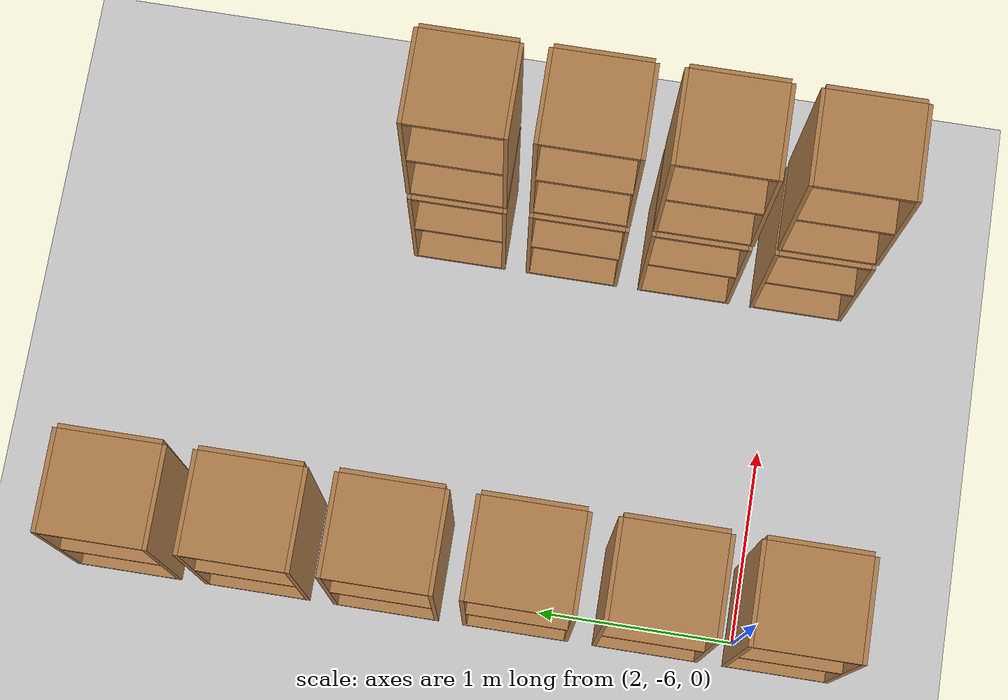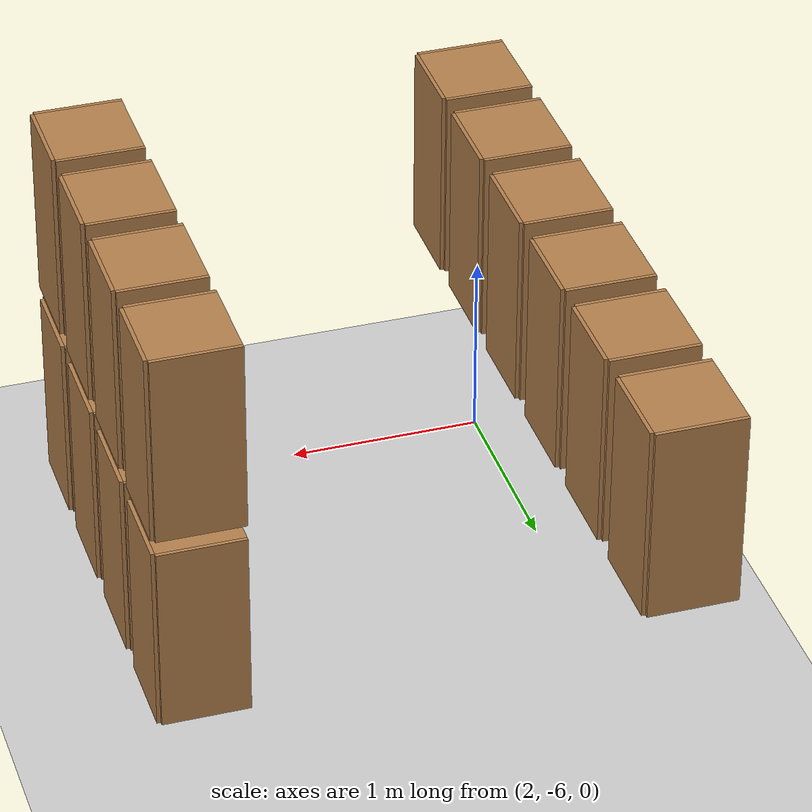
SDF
<sdf version="1.7">
 <world name="default">
  <model name="ground_plane">
   <static>1</static>
   <link name="link">
    <collision name="collision">
     <geometry><plane><normal>0 0 1</normal><size>100 100</size></plane></geometry>
     <surface><friction><ode><mu>100</mu><mu2>50</mu2></ode></friction></surface>
    </collision>
    <visual name="visual">
     <cast_shadows>0</cast_shadows>
     <geometry><plane><normal>0 0 1</normal><size>100 100</size></plane></geometry>
     <material>
      <script><uri>file://media/materials/scripts/gazebo.material</uri><name>Gazebo/Grey</name></script>
     </material>
    </visual>
   </link>
  </model>
  <model name="cabinet_29">
   <static>1</static>
   <link name="cabinet_bottom_plate">
    <inertial>
     <pose>0 0 -1 0 -0 0</pose>
     <inertia><ixx>2.05</ixx><ixy>0</ixy><ixz>0</ixz><iyy>2.05</iyy><iyz>0</iyz><izz>2.05</izz></inertia>
     <mass>25</mass>
    </inertial>
    <collision name="cabinet_bottom_plate_geom">
     <pose>0 0 0.01 0 -0 0</pose>
     <geometry><box><size>0.45 0.45 0.02</size></box></geometry>
    </collision>
    <visual name="cabinet_bottom_plate_geom_visual">
     <pose>0 0 0.01 0 -0 0</pose>
     <geometry><box><size>0.45 0.45 0.02</size></box></geometry>
     <material>
      <script><uri>file://media/materials/scripts/gazebo.material</uri><name>Gazebo/Wood</name></script>
     </material>
    </visual>
    <collision name="cabinet_bottom_plate_geom_cabinet_back_plate">
     <pose>0.235 0 0.51 0 -0 0</pose>
     <geometry><box><size>0.02 0.45 1.02</size></box></geometry>
    </collision>
    <visual name="cabinet_bottom_plate_geom_cabinet_back_plate_visual">
     <pose>0.235 0 0.51 0 -0 0</pose>
     <geometry><box><size>0.02 0.45 1.02</size></box></geometry>
     <material>
      <script><uri>file://media/materials/scripts/gazebo.material</uri><name>Gazebo/Wood</name></script>
     </material>
    </visual>
    <collision name="cabinet_bottom_plate_geom_cabinet_left_plate">
     <pose>0 0.235 0.51 0 -0 0</pose>
     <geometry><box><size>0.45 0.02 1.02</size></box></geometry>
    </collision>
    <visual name="cabinet_bottom_plate_geom_cabinet_left_plate_visual">
     <pose>0 0.235 0.51 0 -0 0</pose>
     <geometry><box><size>0.45 0.02 1.02</size></box></geometry>
     <material>
      <script><uri>file://media/materials/scripts/gazebo.material</uri><name>Gazebo/Wood</name></script>
     </material>
    </visual>
    <collision name="cabinet_bottom_plate_geom_cabinet_middle_plate">
     <pose>0 0 0.51 0 -0 0</pose>
     <geometry><box><size>0.45 0.45 0.02</size></box></geometry>
    </collision>
    <visual name="cabinet_bottom_plate_geom_cabinet_middle_plate_visual">
     <pose>0 0 0.51 0 -0 0</pose>
     <geometry><box><size>0.45 0.45 0.02</size></box></geometry>
     <material>
      <script><uri>file://media/materials/scripts/gazebo.material</uri><name>Gazebo/Wood</name></script>
     </material>
    </visual>
    <collision name="cabinet_bottom_plate_geom_cabinet_right_plate">
     <pose>0 -0.235 0.51 0 -0 0</pose>
     <geometry><box><size>0.45 0.02 1.02</size></box></geometry>
    </collision>
    <visual name="cabinet_bottom_plate_geom_cabinet_right_plate_visual">
     <pose>0 -0.235 0.51 0 -0 0</pose>
     <geometry><box><size>0.45 0.02 1.02</size></box></geometry>
     <material>
      <script><uri>file://media/materials/scripts/gazebo.material</uri><name>Gazebo/Wood</name></script>
     </material>
    </visual>
    <collision name="cabinet_bottom_plate_geom_cabinet_top_plate">
     <pose>0 0 1.01 0 -0 0</pose>
     <geometry><box><size>0.45 0.45 0.02</size></box></geometry>
    </collision>
    <visual name="cabinet_bottom_plate_geom_cabinet_top_plate_visual">
     <pose>0 0 1.01 0 -0 0</pose>
     <geometry><box><size>0.45 0.45 0.02</size></box></geometry>
     <material>
      <script><uri>file://media/materials/scripts/gazebo.material</uri><name>Gazebo/Wood</name></script>
     </material>
    </visual>
   </link>
   <pose>4 -4.9 0 0 -0 0</pose>
  </model>
  <model name="cabinet_30">
   <static>1</static>
   <link name="cabinet_bottom_plate">
    <inertial>
     <pose>0 0 -1 0 -0 0</pose>
     <inertia><ixx>2.05</ixx><ixy>0</ixy><ixz>0</ixz><iyy>2.05</iyy><iyz>0</iyz><izz>2.05</izz></inertia>
     <mass>25</mass>
    </inertial>
    <collision name="cabinet_bottom_plate_geom">
     <pose>0 0 0.01 0 -0 0</pose>
     <geometry><box><size>0.45 0.45 0.02</size></box></geometry>
    </collision>
    <visual name="cabinet_bottom_plate_geom_visual">
     <pose>0 0 0.01 0 -0 0</pose>
     <geometry><box><size>0.45 0.45 0.02</size></box></geometry>
     <material>
      <script><uri>file://media/materials/scripts/gazebo.material</uri><name>Gazebo/Wood</name></script>
     </material>
    </visual>
    <collision name="cabinet_bottom_plate_geom_cabinet_back_plate">
     <pose>0.235 0 0.51 0 -0 0</pose>
     <geometry><box><size>0.02 0.45 1.02</size></box></geometry>
    </collision>
    <visual name="cabinet_bottom_plate_geom_cabinet_back_plate_visual">
     <pose>0.235 0 0.51 0 -0 0</pose>
     <geometry><box><size>0.02 0.45 1.02</size></box></geometry>
     <material>
      <script><uri>file://media/materials/scripts/gazebo.material</uri><name>Gazebo/Wood</name></script>
     </material>
    </visual>
    <collision name="cabinet_bottom_plate_geom_cabinet_left_plate">
     <pose>0 0.235 0.51 0 -0 0</pose>
     <geometry><box><size>0.45 0.02 1.02</size></box></geometry>
    </collision>
    <visual name="cabinet_bottom_plate_geom_cabinet_left_plate_visual">
     <pose>0 0.235 0.51 0 -0 0</pose>
     <geometry><box><size>0.45 0.02 1.02</size></box></geometry>
     <material>
      <script><uri>file://media/materials/scripts/gazebo.material</uri><name>Gazebo/Wood</name></script>
     </material>
    </visual>
    <collision name="cabinet_bottom_plate_geom_cabinet_middle_plate">
     <pose>0 0 0.51 0 -0 0</pose>
     <geometry><box><size>0.45 0.45 0.02</size></box></geometry>
    </collision>
    <visual name="cabinet_bottom_plate_geom_cabinet_middle_plate_visual">
     <pose>0 0 0.51 0 -0 0</pose>
     <geometry><box><size>0.45 0.45 0.02</size></box></geometry>
     <material>
      <script><uri>file://media/materials/scripts/gazebo.material</uri><name>Gazebo/Wood</name></script>
     </material>
    </visual>
    <collision name="cabinet_bottom_plate_geom_cabinet_right_plate">
     <pose>0 -0.235 0.51 0 -0 0</pose>
     <geometry><box><size>0.45 0.02 1.02</size></box></geometry>
    </collision>
    <visual name="cabinet_bottom_plate_geom_cabinet_right_plate_visual">
     <pose>0 -0.235 0.51 0 -0 0</pose>
     <geometry><box><size>0.45 0.02 1.02</size></box></geometry>
     <material>
      <script><uri>file://media/materials/scripts/gazebo.material</uri><name>Gazebo/Wood</name></script>
     </material>
    </visual>
    <collision name="cabinet_bottom_plate_geom_cabinet_top_plate">
     <pose>0 0 1.01 0 -0 0</pose>
     <geometry><box><size>0.45 0.45 0.02</size></box></geometry>
    </collision>
    <visual name="cabinet_bottom_plate_geom_cabinet_top_plate_visual">
     <pose>0 0 1.01 0 -0 0</pose>
     <geometry><box><size>0.45 0.45 0.02</size></box></geometry>
     <material>
      <script><uri>file://media/materials/scripts/gazebo.material</uri><name>Gazebo/Wood</name></script>
     </material>
    </visual>
   </link>
   <pose>4 -4.3 0 0 -0 0</pose>
  </model>
  <model name="cabinet_31">
   <static>1</static>
   <link name="cabinet_bottom_plate">
    <inertial>
     <pose>0 0 -1 0 -0 0</pose>
     <inertia><ixx>2.05</ixx><ixy>0</ixy><ixz>0</ixz><iyy>2.05</iyy><iyz>0</iyz><izz>2.05</izz></inertia>
     <mass>25</mass>
    </inertial>
    <collision name="cabinet_bottom_plate_geom">
     <pose>0 0 0.01 0 -0 0</pose>
     <geometry><box><size>0.45 0.45 0.02</size></box></geometry>
    </collision>
    <visual name="cabinet_bottom_plate_geom_visual">
     <pose>0 0 0.01 0 -0 0</pose>
     <geometry><box><size>0.45 0.45 0.02</size></box></geometry>
     <material>
      <script><uri>file://media/materials/scripts/gazebo.material</uri><name>Gazebo/Wood</name></script>
     </material>
    </visual>
    <collision name="cabinet_bottom_plate_geom_cabinet_back_plate">
     <pose>0.235 0 0.51 0 -0 0</pose>
     <geometry><box><size>0.02 0.45 1.02</size></box></geometry>
    </collision>
    <visual name="cabinet_bottom_plate_geom_cabinet_back_plate_visual">
     <pose>0.235 0 0.51 0 -0 0</pose>
     <geometry><box><size>0.02 0.45 1.02</size></box></geometry>
     <material>
      <script><uri>file://media/materials/scripts/gazebo.material</uri><name>Gazebo/Wood</name></script>
     </material>
    </visual>
    <collision name="cabinet_bottom_plate_geom_cabinet_left_plate">
     <pose>0 0.235 0.51 0 -0 0</pose>
     <geometry><box><size>0.45 0.02 1.02</size></box></geometry>
    </collision>
    <visual name="cabinet_bottom_plate_geom_cabinet_left_plate_visual">
     <pose>0 0.235 0.51 0 -0 0</pose>
     <geometry><box><size>0.45 0.02 1.02</size></box></geometry>
     <material>
      <script><uri>file://media/materials/scripts/gazebo.material</uri><name>Gazebo/Wood</name></script>
     </material>
    </visual>
    <collision name="cabinet_bottom_plate_geom_cabinet_middle_plate">
     <pose>0 0 0.51 0 -0 0</pose>
     <geometry><box><size>0.45 0.45 0.02</size></box></geometry>
    </collision>
    <visual name="cabinet_bottom_plate_geom_cabinet_middle_plate_visual">
     <pose>0 0 0.51 0 -0 0</pose>
     <geometry><box><size>0.45 0.45 0.02</size></box></geometry>
     <material>
      <script><uri>file://media/materials/scripts/gazebo.material</uri><name>Gazebo/Wood</name></script>
     </material>
    </visual>
    <collision name="cabinet_bottom_plate_geom_cabinet_right_plate">
     <pose>0 -0.235 0.51 0 -0 0</pose>
     <geometry><box><size>0.45 0.02 1.02</size></box></geometry>
    </collision>
    <visual name="cabinet_bottom_plate_geom_cabinet_right_plate_visual">
     <pose>0 -0.235 0.51 0 -0 0</pose>
     <geometry><box><size>0.45 0.02 1.02</size></box></geometry>
     <material>
      <script><uri>file://media/materials/scripts/gazebo.material</uri><name>Gazebo/Wood</name></script>
     </material>
    </visual>
    <collision name="cabinet_bottom_plate_geom_cabinet_top_plate">
     <pose>0 0 1.01 0 -0 0</pose>
     <geometry><box><size>0.45 0.45 0.02</size></box></geometry>
    </collision>
    <visual name="cabinet_bottom_plate_geom_cabinet_top_plate_visual">
     <pose>0 0 1.01 0 -0 0</pose>
     <geometry><box><size>0.45 0.45 0.02</size></box></geometry>
     <material>
      <script><uri>file://media/materials/scripts/gazebo.material</uri><name>Gazebo/Wood</name></script>
     </material>
    </visual>
   </link>
   <pose>4 -6.1 0 0 -0 0</pose>
  </model>
  <model name="cabinet_32">
   <static>1</static>
   <link name="cabinet_bottom_plate">
    <inertial>
     <pose>0 0 -1 0 -0 0</pose>
     <inertia><ixx>2.05</ixx><ixy>0</ixy><ixz>0</ixz><iyy>2.05</iyy><iyz>0</iyz><izz>2.05</izz></inertia>
     <mass>25</mass>
    </inertial>
    <collision name="cabinet_bottom_plate_geom">
     <pose>0 0 0.01 0 -0 0</pose>
     <geometry><box><size>0.45 0.45 0.02</size></box></geometry>
    </collision>
    <visual name="cabinet_bottom_plate_geom_visual">
     <pose>0 0 0.01 0 -0 0</pose>
     <geometry><box><size>0.45 0.45 0.02</size></box></geometry>
     <material>
      <script><uri>file://media/materials/scripts/gazebo.material</uri><name>Gazebo/Wood</name></script>
     </material>
    </visual>
    <collision name="cabinet_bottom_plate_geom_cabinet_back_plate">
     <pose>0.235 0 0.51 0 -0 0</pose>
     <geometry><box><size>0.02 0.45 1.02</size></box></geometry>
    </collision>
    <visual name="cabinet_bottom_plate_geom_cabinet_back_plate_visual">
     <pose>0.235 0 0.51 0 -0 0</pose>
     <geometry><box><size>0.02 0.45 1.02</size></box></geometry>
     <material>
      <script><uri>file://media/materials/scripts/gazebo.material</uri><name>Gazebo/Wood</name></script>
     </material>
    </visual>
    <collision name="cabinet_bottom_plate_geom_cabinet_left_plate">
     <pose>0 0.235 0.51 0 -0 0</pose>
     <geometry><box><size>0.45 0.02 1.02</size></box></geometry>
    </collision>
    <visual name="cabinet_bottom_plate_geom_cabinet_left_plate_visual">
     <pose>0 0.235 0.51 0 -0 0</pose>
     <geometry><box><size>0.45 0.02 1.02</size></box></geometry>
     <material>
      <script><uri>file://media/materials/scripts/gazebo.material</uri><name>Gazebo/Wood</name></script>
     </material>
    </visual>
    <collision name="cabinet_bottom_plate_geom_cabinet_middle_plate">
     <pose>0 0 0.51 0 -0 0</pose>
     <geometry><box><size>0.45 0.45 0.02</size></box></geometry>
    </collision>
    <visual name="cabinet_bottom_plate_geom_cabinet_middle_plate_visual">
     <pose>0 0 0.51 0 -0 0</pose>
     <geometry><box><size>0.45 0.45 0.02</size></box></geometry>
     <material>
      <script><uri>file://media/materials/scripts/gazebo.material</uri><name>Gazebo/Wood</name></script>
     </material>
    </visual>
    <collision name="cabinet_bottom_plate_geom_cabinet_right_plate">
     <pose>0 -0.235 0.51 0 -0 0</pose>
     <geometry><box><size>0.45 0.02 1.02</size></box></geometry>
    </collision>
    <visual name="cabinet_bottom_plate_geom_cabinet_right_plate_visual">
     <pose>0 -0.235 0.51 0 -0 0</pose>
     <geometry><box><size>0.45 0.02 1.02</size></box></geometry>
     <material>
      <script><uri>file://media/materials/scripts/gazebo.material</uri><name>Gazebo/Wood</name></script>
     </material>
    </visual>
    <collision name="cabinet_bottom_plate_geom_cabinet_top_plate">
     <pose>0 0 1.01 0 -0 0</pose>
     <geometry><box><size>0.45 0.45 0.02</size></box></geometry>
    </collision>
    <visual name="cabinet_bottom_plate_geom_cabinet_top_plate_visual">
     <pose>0 0 1.01 0 -0 0</pose>
     <geometry><box><size>0.45 0.45 0.02</size></box></geometry>
     <material>
      <script><uri>file://media/materials/scripts/gazebo.material</uri><name>Gazebo/Wood</name></script>
     </material>
    </visual>
   </link>
   <pose>4 -5.5 0 0 -0 0</pose>
  </model>
  <model name="cabinet_115">
   <static>1</static>
   <link name="cabinet_bottom_plate">
    <inertial>
     <pose>0 0 -1 0 -0 0</pose>
     <inertia><ixx>2.05</ixx><ixy>0</ixy><ixz>0</ixz><iyy>2.05</iyy><iyz>0</iyz><izz>2.05</izz></inertia>
     <mass>25</mass>
    </inertial>
    <collision name="cabinet_bottom_plate_geom">
     <pose>0 0 0.01 0 -0 0</pose>
     <geometry><box><size>0.45 0.45 0.02</size></box></geometry>
    </collision>
    <visual name="cabinet_bottom_plate_geom_visual">
     <pose>0 0 0.01 0 -0 0</pose>
     <geometry><box><size>0.45 0.45 0.02</size></box></geometry>
     <material>
      <script><uri>file://media/materials/scripts/gazebo.material</uri><name>Gazebo/Wood</name></script>
     </material>
    </visual>
    <collision name="cabinet_bottom_plate_geom_cabinet_back_plate">
     <pose>0.235 0 0.51 0 -0 0</pose>
     <geometry><box><size>0.02 0.45 1.02</size></box></geometry>
    </collision>
    <visual name="cabinet_bottom_plate_geom_cabinet_back_plate_visual">
     <pose>0.235 0 0.51 0 -0 0</pose>
     <geometry><box><size>0.02 0.45 1.02</size></box></geometry>
     <material>
      <script><uri>file://media/materials/scripts/gazebo.material</uri><name>Gazebo/Wood</name></script>
     </material>
    </visual>
    <collision name="cabinet_bottom_plate_geom_cabinet_left_plate">
     <pose>0 0.235 0.51 0 -0 0</pose>
     <geometry><box><size>0.45 0.02 1.02</size></box></geometry>
    </collision>
    <visual name="cabinet_bottom_plate_geom_cabinet_left_plate_visual">
     <pose>0 0.235 0.51 0 -0 0</pose>
     <geometry><box><size>0.45 0.02 1.02</size></box></geometry>
     <material>
      <script><uri>file://media/materials/scripts/gazebo.material</uri><name>Gazebo/Wood</name></script>
     </material>
    </visual>
    <collision name="cabinet_bottom_plate_geom_cabinet_middle_plate">
     <pose>0 0 0.51 0 -0 0</pose>
     <geometry><box><size>0.45 0.45 0.02</size></box></geometry>
    </collision>
    <visual name="cabinet_bottom_plate_geom_cabinet_middle_plate_visual">
     <pose>0 0 0.51 0 -0 0</pose>
     <geometry><box><size>0.45 0.45 0.02</size></box></geometry>
     <material>
      <script><uri>file://media/materials/scripts/gazebo.material</uri><name>Gazebo/Wood</name></script>
     </material>
    </visual>
    <collision name="cabinet_bottom_plate_geom_cabinet_right_plate">
     <pose>0 -0.235 0.51 0 -0 0</pose>
     <geometry><box><size>0.45 0.02 1.02</size></box></geometry>
    </collision>
    <visual name="cabinet_bottom_plate_geom_cabinet_right_plate_visual">
     <pose>0 -0.235 0.51 0 -0 0</pose>
     <geometry><box><size>0.45 0.02 1.02</size></box></geometry>
     <material>
      <script><uri>file://media/materials/scripts/gazebo.material</uri><name>Gazebo/Wood</name></script>
     </material>
    </visual>
    <collision name="cabinet_bottom_plate_geom_cabinet_top_plate">
     <pose>0 0 1.01 0 -0 0</pose>
     <geometry><box><size>0.45 0.45 0.02</size></box></geometry>
    </collision>
    <visual name="cabinet_bottom_plate_geom_cabinet_top_plate_visual">
     <pose>0 0 1.01 0 -0 0</pose>
     <geometry><box><size>0.45 0.45 0.02</size></box></geometry>
     <material>
      <script><uri>file://media/materials/scripts/gazebo.material</uri><name>Gazebo/Wood</name></script>
     </material>
    </visual>
   </link>
   <pose>4 -4.3 1.1 0 -0 0</pose>
  </model>
  <model name="cabinet_16_clone_1">
   <static>1</static>
   <link name="cabinet_bottom_plate">
    <inertial>
     <pose>0 0 -1 0 -0 0</pose>
     <inertia><ixx>2.05</ixx><ixy>0</ixy><ixz>0</ixz><iyy>2.05</iyy><iyz>0</iyz><izz>2.05</izz></inertia>
     <mass>25</mass>
    </inertial>
    <collision name="cabinet_bottom_plate_geom">
     <pose>0 0 0.01 0 -0 0</pose>
     <geometry><box><size>0.45 0.45 0.02</size></box></geometry>
    </collision>
    <visual name="cabinet_bottom_plate_geom_visual">
     <pose>0 0 0.01 0 -0 0</pose>
     <geometry><box><size>0.45 0.45 0.02</size></box></geometry>
     <material>
      <script><uri>file://media/materials/scripts/gazebo.material</uri><name>Gazebo/Wood</name></script>
     </material>
    </visual>
    <collision name="cabinet_bottom_plate_geom_cabinet_back_plate">
     <pose>0.235 0 0.51 0 -0 0</pose>
     <geometry><box><size>0.02 0.45 1.02</size></box></geometry>
    </collision>
    <visual name="cabinet_bottom_plate_geom_cabinet_back_plate_visual">
     <pose>0.235 0 0.51 0 -0 0</pose>
     <geometry><box><size>0.02 0.45 1.02</size></box></geometry>
     <material>
      <script><uri>file://media/materials/scripts/gazebo.material</uri><name>Gazebo/Wood</name></script>
     </material>
    </visual>
    <collision name="cabinet_bottom_plate_geom_cabinet_left_plate">
     <pose>0 0.235 0.51 0 -0 0</pose>
     <geometry><box><size>0.45 0.02 1.02</size></box></geometry>
    </collision>
    <visual name="cabinet_bottom_plate_geom_cabinet_left_plate_visual">
     <pose>0 0.235 0.51 0 -0 0</pose>
     <geometry><box><size>0.45 0.02 1.02</size></box></geometry>
     <material>
      <script><uri>file://media/materials/scripts/gazebo.material</uri><name>Gazebo/Wood</name></script>
     </material>
    </visual>
    <collision name="cabinet_bottom_plate_geom_cabinet_middle_plate">
     <pose>0 0 0.51 0 -0 0</pose>
     <geometry><box><size>0.45 0.45 0.02</size></box></geometry>
    </collision>
    <visual name="cabinet_bottom_plate_geom_cabinet_middle_plate_visual">
     <pose>0 0 0.51 0 -0 0</pose>
     <geometry><box><size>0.45 0.45 0.02</size></box></geometry>
     <material>
      <script><uri>file://media/materials/scripts/gazebo.material</uri><name>Gazebo/Wood</name></script>
     </material>
    </visual>
    <collision name="cabinet_bottom_plate_geom_cabinet_right_plate">
     <pose>0 -0.235 0.51 0 -0 0</pose>
     <geometry><box><size>0.45 0.02 1.02</size></box></geometry>
    </collision>
    <visual name="cabinet_bottom_plate_geom_cabinet_right_plate_visual">
     <pose>0 -0.235 0.51 0 -0 0</pose>
     <geometry><box><size>0.45 0.02 1.02</size></box></geometry>
     <material>
      <script><uri>file://media/materials/scripts/gazebo.material</uri><name>Gazebo/Wood</name></script>
     </material>
    </visual>
    <collision name="cabinet_bottom_plate_geom_cabinet_top_plate">
     <pose>0 0 1.01 0 -0 0</pose>
     <geometry><box><size>0.45 0.45 0.02</size></box></geometry>
    </collision>
    <visual name="cabinet_bottom_plate_geom_cabinet_top_plate_visual">
     <pose>0 0 1.01 0 -0 0</pose>
     <geometry><box><size>0.45 0.45 0.02</size></box></geometry>
     <material>
      <script><uri>file://media/materials/scripts/gazebo.material</uri><name>Gazebo/Wood</name></script>
     </material>
    </visual>
   </link>
   <pose>4 -4.9 1.1 0 -0 0</pose>
  </model>
  <model name="cabinet_16_clone_2">
   <static>1</static>
   <link name="cabinet_bottom_plate">
    <inertial>
     <pose>0 0 -1 0 -0 0</pose>
     <inertia><ixx>2.05</ixx><ixy>0</ixy><ixz>0</ixz><iyy>2.05</iyy><iyz>0</iyz><izz>2.05</izz></inertia>
     <mass>25</mass>
    </inertial>
    <collision name="cabinet_bottom_plate_geom">
     <pose>0 0 0.01 0 -0 0</pose>
     <geometry><box><size>0.45 0.45 0.02</size></box></geometry>
    </collision>
    <visual name="cabinet_bottom_plate_geom_visual">
     <pose>0 0 0.01 0 -0 0</pose>
     <geometry><box><size>0.45 0.45 0.02</size></box></geometry>
     <material>
      <script><uri>file://media/materials/scripts/gazebo.material</uri><name>Gazebo/Wood</name></script>
     </material>
    </visual>
    <collision name="cabinet_bottom_plate_geom_cabinet_back_plate">
     <pose>0.235 0 0.51 0 -0 0</pose>
     <geometry><box><size>0.02 0.45 1.02</size></box></geometry>
    </collision>
    <visual name="cabinet_bottom_plate_geom_cabinet_back_plate_visual">
     <pose>0.235 0 0.51 0 -0 0</pose>
     <geometry><box><size>0.02 0.45 1.02</size></box></geometry>
     <material>
      <script><uri>file://media/materials/scripts/gazebo.material</uri><name>Gazebo/Wood</name></script>
     </material>
    </visual>
    <collision name="cabinet_bottom_plate_geom_cabinet_left_plate">
     <pose>0 0.235 0.51 0 -0 0</pose>
     <geometry><box><size>0.45 0.02 1.02</size></box></geometry>
    </collision>
    <visual name="cabinet_bottom_plate_geom_cabinet_left_plate_visual">
     <pose>0 0.235 0.51 0 -0 0</pose>
     <geometry><box><size>0.45 0.02 1.02</size></box></geometry>
     <material>
      <script><uri>file://media/materials/scripts/gazebo.material</uri><name>Gazebo/Wood</name></script>
     </material>
    </visual>
    <collision name="cabinet_bottom_plate_geom_cabinet_middle_plate">
     <pose>0 0 0.51 0 -0 0</pose>
     <geometry><box><size>0.45 0.45 0.02</size></box></geometry>
    </collision>
    <visual name="cabinet_bottom_plate_geom_cabinet_middle_plate_visual">
     <pose>0 0 0.51 0 -0 0</pose>
     <geometry><box><size>0.45 0.45 0.02</size></box></geometry>
     <material>
      <script><uri>file://media/materials/scripts/gazebo.material</uri><name>Gazebo/Wood</name></script>
     </material>
    </visual>
    <collision name="cabinet_bottom_plate_geom_cabinet_right_plate">
     <pose>0 -0.235 0.51 0 -0 0</pose>
     <geometry><box><size>0.45 0.02 1.02</size></box></geometry>
    </collision>
    <visual name="cabinet_bottom_plate_geom_cabinet_right_plate_visual">
     <pose>0 -0.235 0.51 0 -0 0</pose>
     <geometry><box><size>0.45 0.02 1.02</size></box></geometry>
     <material>
      <script><uri>file://media/materials/scripts/gazebo.material</uri><name>Gazebo/Wood</name></script>
     </material>
    </visual>
    <collision name="cabinet_bottom_plate_geom_cabinet_top_plate">
     <pose>0 0 1.01 0 -0 0</pose>
     <geometry><box><size>0.45 0.45 0.02</size></box></geometry>
    </collision>
    <visual name="cabinet_bottom_plate_geom_cabinet_top_plate_visual">
     <pose>0 0 1.01 0 -0 0</pose>
     <geometry><box><size>0.45 0.45 0.02</size></box></geometry>
     <material>
      <script><uri>file://media/materials/scripts/gazebo.material</uri><name>Gazebo/Wood</name></script>
     </material>
    </visual>
   </link>
   <pose>4 -5.5 1.1 0 -0 0</pose>
  </model>
  <model name="cabinet_16_clone_3">
   <static>1</static>
   <link name="cabinet_bottom_plate">
    <inertial>
     <pose>0 0 -1 0 -0 0</pose>
     <inertia><ixx>2.05</ixx><ixy>0</ixy><ixz>0</ixz><iyy>2.05</iyy><iyz>0</iyz><izz>2.05</izz></inertia>
     <mass>25</mass>
    </inertial>
    <collision name="cabinet_bottom_plate_geom">
     <pose>0 0 0.01 0 -0 0</pose>
     <geometry><box><size>0.45 0.45 0.02</size></box></geometry>
    </collision>
    <visual name="cabinet_bottom_plate_geom_visual">
     <pose>0 0 0.01 0 -0 0</pose>
     <geometry><box><size>0.45 0.45 0.02</size></box></geometry>
     <material>
      <script><uri>file://media/materials/scripts/gazebo.material</uri><name>Gazebo/Wood</name></script>
     </material>
    </visual>
    <collision name="cabinet_bottom_plate_geom_cabinet_back_plate">
     <pose>0.235 0 0.51 0 -0 0</pose>
     <geometry><box><size>0.02 0.45 1.02</size></box></geometry>
    </collision>
    <visual name="cabinet_bottom_plate_geom_cabinet_back_plate_visual">
     <pose>0.235 0 0.51 0 -0 0</pose>
     <geometry><box><size>0.02 0.45 1.02</size></box></geometry>
     <material>
      <script><uri>file://media/materials/scripts/gazebo.material</uri><name>Gazebo/Wood</name></script>
     </material>
    </visual>
    <collision name="cabinet_bottom_plate_geom_cabinet_left_plate">
     <pose>0 0.235 0.51 0 -0 0</pose>
     <geometry><box><size>0.45 0.02 1.02</size></box></geometry>
    </collision>
    <visual name="cabinet_bottom_plate_geom_cabinet_left_plate_visual">
     <pose>0 0.235 0.51 0 -0 0</pose>
     <geometry><box><size>0.45 0.02 1.02</size></box></geometry>
     <material>
      <script><uri>file://media/materials/scripts/gazebo.material</uri><name>Gazebo/Wood</name></script>
     </material>
    </visual>
    <collision name="cabinet_bottom_plate_geom_cabinet_middle_plate">
     <pose>0 0 0.51 0 -0 0</pose>
     <geometry><box><size>0.45 0.45 0.02</size></box></geometry>
    </collision>
    <visual name="cabinet_bottom_plate_geom_cabinet_middle_plate_visual">
     <pose>0 0 0.51 0 -0 0</pose>
     <geometry><box><size>0.45 0.45 0.02</size></box></geometry>
     <material>
      <script><uri>file://media/materials/scripts/gazebo.material</uri><name>Gazebo/Wood</name></script>
     </material>
    </visual>
    <collision name="cabinet_bottom_plate_geom_cabinet_right_plate">
     <pose>0 -0.235 0.51 0 -0 0</pose>
     <geometry><box><size>0.45 0.02 1.02</size></box></geometry>
    </collision>
    <visual name="cabinet_bottom_plate_geom_cabinet_right_plate_visual">
     <pose>0 -0.235 0.51 0 -0 0</pose>
     <geometry><box><size>0.45 0.02 1.02</size></box></geometry>
     <material>
      <script><uri>file://media/materials/scripts/gazebo.material</uri><name>Gazebo/Wood</name></script>
     </material>
    </visual>
    <collision name="cabinet_bottom_plate_geom_cabinet_top_plate">
     <pose>0 0 1.01 0 -0 0</pose>
     <geometry><box><size>0.45 0.45 0.02</size></box></geometry>
    </collision>
    <visual name="cabinet_bottom_plate_geom_cabinet_top_plate_visual">
     <pose>0 0 1.01 0 -0 0</pose>
     <geometry><box><size>0.45 0.45 0.02</size></box></geometry>
     <material>
      <script><uri>file://media/materials/scripts/gazebo.material</uri><name>Gazebo/Wood</name></script>
     </material>
    </visual>
   </link>
   <pose>4 -6.1 1.1 0 -0 0</pose>
  </model>
  <model name="cabinet_16_clone_4">
   <static>1</static>
   <link name="cabinet_bottom_plate">
    <inertial>
     <pose>0 0 -1 0 -0 0</pose>
     <inertia><ixx>2.05</ixx><ixy>0</ixy><ixz>0</ixz><iyy>2.05</iyy><iyz>0</iyz><izz>2.05</izz></inertia>
     <mass>25</mass>
    </inertial>
    <collision name="cabinet_bottom_plate_geom">
     <pose>0 0 0.01 0 -0 0</pose>
     <geometry><box><size>0.45 0.45 0.02</size></box></geometry>
    </collision>
    <visual name="cabinet_bottom_plate_geom_visual">
     <pose>0 0 0.01 0 -0 0</pose>
     <geometry><box><size>0.45 0.45 0.02</size></box></geometry>
     <material>
      <script><uri>file://media/materials/scripts/gazebo.material</uri><name>Gazebo/Wood</name></script>
     </material>
    </visual>
    <collision name="cabinet_bottom_plate_geom_cabinet_back_plate">
     <pose>0.235 0 0.51 0 -0 0</pose>
     <geometry><box><size>0.02 0.45 1.02</size></box></geometry>
    </collision>
    <visual name="cabinet_bottom_plate_geom_cabinet_back_plate_visual">
     <pose>0.235 0 0.51 0 -0 0</pose>
     <geometry><box><size>0.02 0.45 1.02</size></box></geometry>
     <material>
      <script><uri>file://media/materials/scripts/gazebo.material</uri><name>Gazebo/Wood</name></script>
     </material>
    </visual>
    <collision name="cabinet_bottom_plate_geom_cabinet_left_plate">
     <pose>0 0.235 0.51 0 -0 0</pose>
     <geometry><box><size>0.45 0.02 1.02</size></box></geometry>
    </collision>
    <visual name="cabinet_bottom_plate_geom_cabinet_left_plate_visual">
     <pose>0 0.235 0.51 0 -0 0</pose>
     <geometry><box><size>0.45 0.02 1.02</size></box></geometry>
     <material>
      <script><uri>file://media/materials/scripts/gazebo.material</uri><name>Gazebo/Wood</name></script>
     </material>
    </visual>
    <collision name="cabinet_bottom_plate_geom_cabinet_middle_plate">
     <pose>0 0 0.51 0 -0 0</pose>
     <geometry><box><size>0.45 0.45 0.02</size></box></geometry>
    </collision>
    <visual name="cabinet_bottom_plate_geom_cabinet_middle_plate_visual">
     <pose>0 0 0.51 0 -0 0</pose>
     <geometry><box><size>0.45 0.45 0.02</size></box></geometry>
     <material>
      <script><uri>file://media/materials/scripts/gazebo.material</uri><name>Gazebo/Wood</name></script>
     </material>
    </visual>
    <collision name="cabinet_bottom_plate_geom_cabinet_right_plate">
     <pose>0 -0.235 0.51 0 -0 0</pose>
     <geometry><box><size>0.45 0.02 1.02</size></box></geometry>
    </collision>
    <visual name="cabinet_bottom_plate_geom_cabinet_right_plate_visual">
     <pose>0 -0.235 0.51 0 -0 0</pose>
     <geometry><box><size>0.45 0.02 1.02</size></box></geometry>
     <material>
      <script><uri>file://media/materials/scripts/gazebo.material</uri><name>Gazebo/Wood</name></script>
     </material>
    </visual>
    <collision name="cabinet_bottom_plate_geom_cabinet_top_plate">
     <pose>0 0 1.01 0 -0 0</pose>
     <geometry><box><size>0.45 0.45 0.02</size></box></geometry>
    </collision>
    <visual name="cabinet_bottom_plate_geom_cabinet_top_plate_visual">
     <pose>0 0 1.01 0 -0 0</pose>
     <geometry><box><size>0.45 0.45 0.02</size></box></geometry>
     <material>
      <script><uri>file://media/materials/scripts/gazebo.material</uri><name>Gazebo/Wood</name></script>
     </material>
    </visual>
   </link>
   <pose>2 -3.1 1.1 0 -0 0</pose>
  </model>
  <model name="cabinet_16_clone_5">
   <static>1</static>
   <link name="cabinet_bottom_plate">
    <inertial>
     <pose>0 0 -1 0 -0 0</pose>
     <inertia><ixx>2.05</ixx><ixy>0</ixy><ixz>0</ixz><iyy>2.05</iyy><iyz>0</iyz><izz>2.05</izz></inertia>
     <mass>25</mass>
    </inertial>
    <collision name="cabinet_bottom_plate_geom">
     <pose>0 0 0.01 0 -0 0</pose>
     <geometry><box><size>0.45 0.45 0.02</size></box></geometry>
    </collision>
    <visual name="cabinet_bottom_plate_geom_visual">
     <pose>0 0 0.01 0 -0 0</pose>
     <geometry><box><size>0.45 0.45 0.02</size></box></geometry>
     <material>
      <script><uri>file://media/materials/scripts/gazebo.material</uri><name>Gazebo/Wood</name></script>
     </material>
    </visual>
    <collision name="cabinet_bottom_plate_geom_cabinet_back_plate">
     <pose>0.235 0 0.51 0 -0 0</pose>
     <geometry><box><size>0.02 0.45 1.02</size></box></geometry>
    </collision>
    <visual name="cabinet_bottom_plate_geom_cabinet_back_plate_visual">
     <pose>0.235 0 0.51 0 -0 0</pose>
     <geometry><box><size>0.02 0.45 1.02</size></box></geometry>
     <material>
      <script><uri>file://media/materials/scripts/gazebo.material</uri><name>Gazebo/Wood</name></script>
     </material>
    </visual>
    <collision name="cabinet_bottom_plate_geom_cabinet_left_plate">
     <pose>0 0.235 0.51 0 -0 0</pose>
     <geometry><box><size>0.45 0.02 1.02</size></box></geometry>
    </collision>
    <visual name="cabinet_bottom_plate_geom_cabinet_left_plate_visual">
     <pose>0 0.235 0.51 0 -0 0</pose>
     <geometry><box><size>0.45 0.02 1.02</size></box></geometry>
     <material>
      <script><uri>file://media/materials/scripts/gazebo.material</uri><name>Gazebo/Wood</name></script>
     </material>
    </visual>
    <collision name="cabinet_bottom_plate_geom_cabinet_middle_plate">
     <pose>0 0 0.51 0 -0 0</pose>
     <geometry><box><size>0.45 0.45 0.02</size></box></geometry>
    </collision>
    <visual name="cabinet_bottom_plate_geom_cabinet_middle_plate_visual">
     <pose>0 0 0.51 0 -0 0</pose>
     <geometry><box><size>0.45 0.45 0.02</size></box></geometry>
     <material>
      <script><uri>file://media/materials/scripts/gazebo.material</uri><name>Gazebo/Wood</name></script>
     </material>
    </visual>
    <collision name="cabinet_bottom_plate_geom_cabinet_right_plate">
     <pose>0 -0.235 0.51 0 -0 0</pose>
     <geometry><box><size>0.45 0.02 1.02</size></box></geometry>
    </collision>
    <visual name="cabinet_bottom_plate_geom_cabinet_right_plate_visual">
     <pose>0 -0.235 0.51 0 -0 0</pose>
     <geometry><box><size>0.45 0.02 1.02</size></box></geometry>
     <material>
      <script><uri>file://media/materials/scripts/gazebo.material</uri><name>Gazebo/Wood</name></script>
     </material>
    </visual>
    <collision name="cabinet_bottom_plate_geom_cabinet_top_plate">
     <pose>0 0 1.01 0 -0 0</pose>
     <geometry><box><size>0.45 0.45 0.02</size></box></geometry>
    </collision>
    <visual name="cabinet_bottom_plate_geom_cabinet_top_plate_visual">
     <pose>0 0 1.01 0 -0 0</pose>
     <geometry><box><size>0.45 0.45 0.02</size></box></geometry>
     <material>
      <script><uri>file://media/materials/scripts/gazebo.material</uri><name>Gazebo/Wood</name></script>
     </material>
    </visual>
   </link>
   <pose>2 -3.7 1.1 0 -0 0</pose>
  </model>
  <model name="cabinet_16_clone_6">
   <static>1</static>
   <link name="cabinet_bottom_plate">
    <inertial>
     <pose>0 0 -1 0 -0 0</pose>
     <inertia><ixx>2.05</ixx><ixy>0</ixy><ixz>0</ixz><iyy>2.05</iyy><iyz>0</iyz><izz>2.05</izz></inertia>
     <mass>25</mass>
    </inertial>
    <collision name="cabinet_bottom_plate_geom">
     <pose>0 0 0.01 0 -0 0</pose>
     <geometry><box><size>0.45 0.45 0.02</size></box></geometry>
    </collision>
    <visual name="cabinet_bottom_plate_geom_visual">
     <pose>0 0 0.01 0 -0 0</pose>
     <geometry><box><size>0.45 0.45 0.02</size></box></geometry>
     <material>
      <script><uri>file://media/materials/scripts/gazebo.material</uri><name>Gazebo/Wood</name></script>
     </material>
    </visual>
    <collision name="cabinet_bottom_plate_geom_cabinet_back_plate">
     <pose>0.235 0 0.51 0 -0 0</pose>
     <geometry><box><size>0.02 0.45 1.02</size></box></geometry>
    </collision>
    <visual name="cabinet_bottom_plate_geom_cabinet_back_plate_visual">
     <pose>0.235 0 0.51 0 -0 0</pose>
     <geometry><box><size>0.02 0.45 1.02</size></box></geometry>
     <material>
      <script><uri>file://media/materials/scripts/gazebo.material</uri><name>Gazebo/Wood</name></script>
     </material>
    </visual>
    <collision name="cabinet_bottom_plate_geom_cabinet_left_plate">
     <pose>0 0.235 0.51 0 -0 0</pose>
     <geometry><box><size>0.45 0.02 1.02</size></box></geometry>
    </collision>
    <visual name="cabinet_bottom_plate_geom_cabinet_left_plate_visual">
     <pose>0 0.235 0.51 0 -0 0</pose>
     <geometry><box><size>0.45 0.02 1.02</size></box></geometry>
     <material>
      <script><uri>file://media/materials/scripts/gazebo.material</uri><name>Gazebo/Wood</name></script>
     </material>
    </visual>
    <collision name="cabinet_bottom_plate_geom_cabinet_middle_plate">
     <pose>0 0 0.51 0 -0 0</pose>
     <geometry><box><size>0.45 0.45 0.02</size></box></geometry>
    </collision>
    <visual name="cabinet_bottom_plate_geom_cabinet_middle_plate_visual">
     <pose>0 0 0.51 0 -0 0</pose>
     <geometry><box><size>0.45 0.45 0.02</size></box></geometry>
     <material>
      <script><uri>file://media/materials/scripts/gazebo.material</uri><name>Gazebo/Wood</name></script>
     </material>
    </visual>
    <collision name="cabinet_bottom_plate_geom_cabinet_right_plate">
     <pose>0 -0.235 0.51 0 -0 0</pose>
     <geometry><box><size>0.45 0.02 1.02</size></box></geometry>
    </collision>
    <visual name="cabinet_bottom_plate_geom_cabinet_right_plate_visual">
     <pose>0 -0.235 0.51 0 -0 0</pose>
     <geometry><box><size>0.45 0.02 1.02</size></box></geometry>
     <material>
      <script><uri>file://media/materials/scripts/gazebo.material</uri><name>Gazebo/Wood</name></script>
     </material>
    </visual>
    <collision name="cabinet_bottom_plate_geom_cabinet_top_plate">
     <pose>0 0 1.01 0 -0 0</pose>
     <geometry><box><size>0.45 0.45 0.02</size></box></geometry>
    </collision>
    <visual name="cabinet_bottom_plate_geom_cabinet_top_plate_visual">
     <pose>0 0 1.01 0 -0 0</pose>
     <geometry><box><size>0.45 0.45 0.02</size></box></geometry>
     <material>
      <script><uri>file://media/materials/scripts/gazebo.material</uri><name>Gazebo/Wood</name></script>
     </material>
    </visual>
   </link>
   <pose>2 -4.3 1.1 0 -0 0</pose>
  </model>
  <model name="cabinet_16_clone_7">
   <static>1</static>
   <link name="cabinet_bottom_plate">
    <inertial>
     <pose>0 0 -1 0 -0 0</pose>
     <inertia><ixx>2.05</ixx><ixy>0</ixy><ixz>0</ixz><iyy>2.05</iyy><iyz>0</iyz><izz>2.05</izz></inertia>
     <mass>25</mass>
    </inertial>
    <collision name="cabinet_bottom_plate_geom">
     <pose>0 0 0.01 0 -0 0</pose>
     <geometry><box><size>0.45 0.45 0.02</size></box></geometry>
    </collision>
    <visual name="cabinet_bottom_plate_geom_visual">
     <pose>0 0 0.01 0 -0 0</pose>
     <geometry><box><size>0.45 0.45 0.02</size></box></geometry>
     <material>
      <script><uri>file://media/materials/scripts/gazebo.material</uri><name>Gazebo/Wood</name></script>
     </material>
    </visual>
    <collision name="cabinet_bottom_plate_geom_cabinet_back_plate">
     <pose>0.235 0 0.51 0 -0 0</pose>
     <geometry><box><size>0.02 0.45 1.02</size></box></geometry>
    </collision>
    <visual name="cabinet_bottom_plate_geom_cabinet_back_plate_visual">
     <pose>0.235 0 0.51 0 -0 0</pose>
     <geometry><box><size>0.02 0.45 1.02</size></box></geometry>
     <material>
      <script><uri>file://media/materials/scripts/gazebo.material</uri><name>Gazebo/Wood</name></script>
     </material>
    </visual>
    <collision name="cabinet_bottom_plate_geom_cabinet_left_plate">
     <pose>0 0.235 0.51 0 -0 0</pose>
     <geometry><box><size>0.45 0.02 1.02</size></box></geometry>
    </collision>
    <visual name="cabinet_bottom_plate_geom_cabinet_left_plate_visual">
     <pose>0 0.235 0.51 0 -0 0</pose>
     <geometry><box><size>0.45 0.02 1.02</size></box></geometry>
     <material>
      <script><uri>file://media/materials/scripts/gazebo.material</uri><name>Gazebo/Wood</name></script>
     </material>
    </visual>
    <collision name="cabinet_bottom_plate_geom_cabinet_middle_plate">
     <pose>0 0 0.51 0 -0 0</pose>
     <geometry><box><size>0.45 0.45 0.02</size></box></geometry>
    </collision>
    <visual name="cabinet_bottom_plate_geom_cabinet_middle_plate_visual">
     <pose>0 0 0.51 0 -0 0</pose>
     <geometry><box><size>0.45 0.45 0.02</size></box></geometry>
     <material>
      <script><uri>file://media/materials/scripts/gazebo.material</uri><name>Gazebo/Wood</name></script>
     </material>
    </visual>
    <collision name="cabinet_bottom_plate_geom_cabinet_right_plate">
     <pose>0 -0.235 0.51 0 -0 0</pose>
     <geometry><box><size>0.45 0.02 1.02</size></box></geometry>
    </collision>
    <visual name="cabinet_bottom_plate_geom_cabinet_right_plate_visual">
     <pose>0 -0.235 0.51 0 -0 0</pose>
     <geometry><box><size>0.45 0.02 1.02</size></box></geometry>
     <material>
      <script><uri>file://media/materials/scripts/gazebo.material</uri><name>Gazebo/Wood</name></script>
     </material>
    </visual>
    <collision name="cabinet_bottom_plate_geom_cabinet_top_plate">
     <pose>0 0 1.01 0 -0 0</pose>
     <geometry><box><size>0.45 0.45 0.02</size></box></geometry>
    </collision>
    <visual name="cabinet_bottom_plate_geom_cabinet_top_plate_visual">
     <pose>0 0 1.01 0 -0 0</pose>
     <geometry><box><size>0.45 0.45 0.02</size></box></geometry>
     <material>
      <script><uri>file://media/materials/scripts/gazebo.material</uri><name>Gazebo/Wood</name></script>
     </material>
    </visual>
   </link>
   <pose>2 -4.9 1.1 0 -0 0</pose>
  </model>
  <model name="cabinet_16_clone_8">
   <static>1</static>
   <link name="cabinet_bottom_plate">
    <inertial>
     <pose>0 0 -1 0 -0 0</pose>
     <inertia><ixx>2.05</ixx><ixy>0</ixy><ixz>0</ixz><iyy>2.05</iyy><iyz>0</iyz><izz>2.05</izz></inertia>
     <mass>25</mass>
    </inertial>
    <collision name="cabinet_bottom_plate_geom">
     <pose>0 0 0.01 0 -0 0</pose>
     <geometry><box><size>0.45 0.45 0.02</size></box></geometry>
    </collision>
    <visual name="cabinet_bottom_plate_geom_visual">
     <pose>0 0 0.01 0 -0 0</pose>
     <geometry><box><size>0.45 0.45 0.02</size></box></geometry>
     <material>
      <script><uri>file://media/materials/scripts/gazebo.material</uri><name>Gazebo/Wood</name></script>
     </material>
    </visual>
    <collision name="cabinet_bottom_plate_geom_cabinet_back_plate">
     <pose>0.235 0 0.51 0 -0 0</pose>
     <geometry><box><size>0.02 0.45 1.02</size></box></geometry>
    </collision>
    <visual name="cabinet_bottom_plate_geom_cabinet_back_plate_visual">
     <pose>0.235 0 0.51 0 -0 0</pose>
     <geometry><box><size>0.02 0.45 1.02</size></box></geometry>
     <material>
      <script><uri>file://media/materials/scripts/gazebo.material</uri><name>Gazebo/Wood</name></script>
     </material>
    </visual>
    <collision name="cabinet_bottom_plate_geom_cabinet_left_plate">
     <pose>0 0.235 0.51 0 -0 0</pose>
     <geometry><box><size>0.45 0.02 1.02</size></box></geometry>
    </collision>
    <visual name="cabinet_bottom_plate_geom_cabinet_left_plate_visual">
     <pose>0 0.235 0.51 0 -0 0</pose>
     <geometry><box><size>0.45 0.02 1.02</size></box></geometry>
     <material>
      <script><uri>file://media/materials/scripts/gazebo.material</uri><name>Gazebo/Wood</name></script>
     </material>
    </visual>
    <collision name="cabinet_bottom_plate_geom_cabinet_middle_plate">
     <pose>0 0 0.51 0 -0 0</pose>
     <geometry><box><size>0.45 0.45 0.02</size></box></geometry>
    </collision>
    <visual name="cabinet_bottom_plate_geom_cabinet_middle_plate_visual">
     <pose>0 0 0.51 0 -0 0</pose>
     <geometry><box><size>0.45 0.45 0.02</size></box></geometry>
     <material>
      <script><uri>file://media/materials/scripts/gazebo.material</uri><name>Gazebo/Wood</name></script>
     </material>
    </visual>
    <collision name="cabinet_bottom_plate_geom_cabinet_right_plate">
     <pose>0 -0.235 0.51 0 -0 0</pose>
     <geometry><box><size>0.45 0.02 1.02</size></box></geometry>
    </collision>
    <visual name="cabinet_bottom_plate_geom_cabinet_right_plate_visual">
     <pose>0 -0.235 0.51 0 -0 0</pose>
     <geometry><box><size>0.45 0.02 1.02</size></box></geometry>
     <material>
      <script><uri>file://media/materials/scripts/gazebo.material</uri><name>Gazebo/Wood</name></script>
     </material>
    </visual>
    <collision name="cabinet_bottom_plate_geom_cabinet_top_plate">
     <pose>0 0 1.01 0 -0 0</pose>
     <geometry><box><size>0.45 0.45 0.02</size></box></geometry>
    </collision>
    <visual name="cabinet_bottom_plate_geom_cabinet_top_plate_visual">
     <pose>0 0 1.01 0 -0 0</pose>
     <geometry><box><size>0.45 0.45 0.02</size></box></geometry>
     <material>
      <script><uri>file://media/materials/scripts/gazebo.material</uri><name>Gazebo/Wood</name></script>
     </material>
    </visual>
   </link>
   <pose>2 -5.5 1.1 0 -0 0</pose>
  </model>
  <model name="cabinet_16_clone_9">
   <static>1</static>
   <link name="cabinet_bottom_plate">
    <inertial>
     <pose>0 0 -1 0 -0 0</pose>
     <inertia><ixx>2.05</ixx><ixy>0</ixy><ixz>0</ixz><iyy>2.05</iyy><iyz>0</iyz><izz>2.05</izz></inertia>
     <mass>25</mass>
    </inertial>
    <collision name="cabinet_bottom_plate_geom">
     <pose>0 0 0.01 0 -0 0</pose>
     <geometry><box><size>0.45 0.45 0.02</size></box></geometry>
    </collision>
    <visual name="cabinet_bottom_plate_geom_visual">
     <pose>0 0 0.01 0 -0 0</pose>
     <geometry><box><size>0.45 0.45 0.02</size></box></geometry>
     <material>
      <script><uri>file://media/materials/scripts/gazebo.material</uri><name>Gazebo/Wood</name></script>
     </material>
    </visual>
    <collision name="cabinet_bottom_plate_geom_cabinet_back_plate">
     <pose>0.235 0 0.51 0 -0 0</pose>
     <geometry><box><size>0.02 0.45 1.02</size></box></geometry>
    </collision>
    <visual name="cabinet_bottom_plate_geom_cabinet_back_plate_visual">
     <pose>0.235 0 0.51 0 -0 0</pose>
     <geometry><box><size>0.02 0.45 1.02</size></box></geometry>
     <material>
      <script><uri>file://media/materials/scripts/gazebo.material</uri><name>Gazebo/Wood</name></script>
     </material>
    </visual>
    <collision name="cabinet_bottom_plate_geom_cabinet_left_plate">
     <pose>0 0.235 0.51 0 -0 0</pose>
     <geometry><box><size>0.45 0.02 1.02</size></box></geometry>
    </collision>
    <visual name="cabinet_bottom_plate_geom_cabinet_left_plate_visual">
     <pose>0 0.235 0.51 0 -0 0</pose>
     <geometry><box><size>0.45 0.02 1.02</size></box></geometry>
     <material>
      <script><uri>file://media/materials/scripts/gazebo.material</uri><name>Gazebo/Wood</name></script>
     </material>
    </visual>
    <collision name="cabinet_bottom_plate_geom_cabinet_middle_plate">
     <pose>0 0 0.51 0 -0 0</pose>
     <geometry><box><size>0.45 0.45 0.02</size></box></geometry>
    </collision>
    <visual name="cabinet_bottom_plate_geom_cabinet_middle_plate_visual">
     <pose>0 0 0.51 0 -0 0</pose>
     <geometry><box><size>0.45 0.45 0.02</size></box></geometry>
     <material>
      <script><uri>file://media/materials/scripts/gazebo.material</uri><name>Gazebo/Wood</name></script>
     </material>
    </visual>
    <collision name="cabinet_bottom_plate_geom_cabinet_right_plate">
     <pose>0 -0.235 0.51 0 -0 0</pose>
     <geometry><box><size>0.45 0.02 1.02</size></box></geometry>
    </collision>
    <visual name="cabinet_bottom_plate_geom_cabinet_right_plate_visual">
     <pose>0 -0.235 0.51 0 -0 0</pose>
     <geometry><box><size>0.45 0.02 1.02</size></box></geometry>
     <material>
      <script><uri>file://media/materials/scripts/gazebo.material</uri><name>Gazebo/Wood</name></script>
     </material>
    </visual>
    <collision name="cabinet_bottom_plate_geom_cabinet_top_plate">
     <pose>0 0 1.01 0 -0 0</pose>
     <geometry><box><size>0.45 0.45 0.02</size></box></geometry>
    </collision>
    <visual name="cabinet_bottom_plate_geom_cabinet_top_plate_visual">
     <pose>0 0 1.01 0 -0 0</pose>
     <geometry><box><size>0.45 0.45 0.02</size></box></geometry>
     <material>
      <script><uri>file://media/materials/scripts/gazebo.material</uri><name>Gazebo/Wood</name></script>
     </material>
    </visual>
   </link>
   <pose>2 -6.1 1.1 0 -0 0</pose>
  </model>
 </world>
</sdf>
